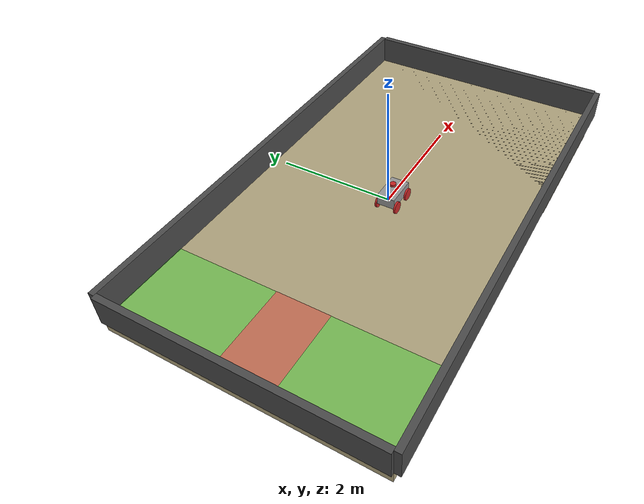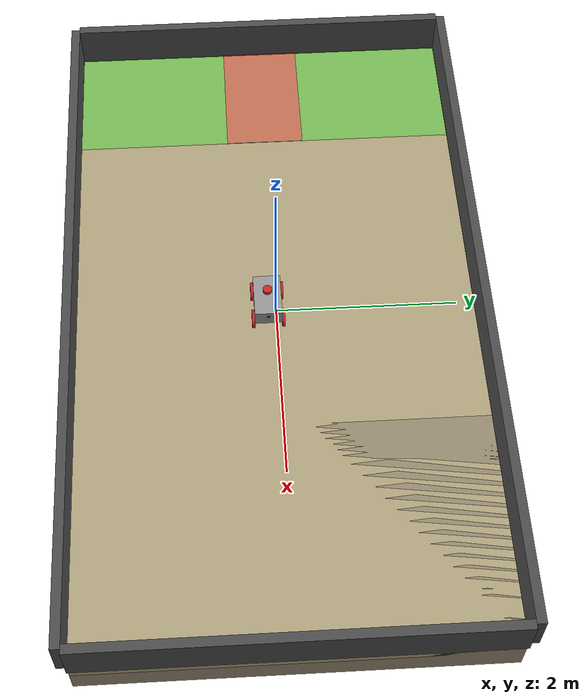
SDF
<sdf version="1.7">
 <world name="lunabotics_uk_arena">
  <physics type="ode">
   <max_step_size>0.001</max_step_size>
   <real_time_factor>1</real_time_factor>
   <real_time_update_rate>1000</real_time_update_rate>
   <gravity>0 0 -9.81</gravity>
  </physics>
  <light name="sun" type="directional">
   <pose>0 0 10 0 -0 0</pose>
   <diffuse>0.8 0.8 0.8 1</diffuse>
   <specular>0.2 0.2 0.2 1</specular>
   <attenuation>
    <range>1000</range>
    <constant>0.9</constant>
    <linear>0.01</linear>
    <quadratic>0.001</quadratic>
   </attenuation>
   <direction>-0.5 0.1 -0.9</direction>
   <spot><inner_angle>0</inner_angle><outer_angle>0</outer_angle><falloff>0</falloff></spot>
  </light>
  <model name="arena_floor">
   <static>1</static>
   <link name="floor_link">
    <collision name="floor_collision">
     <geometry><box><size>7.9 4.4 0.215</size></box></geometry>
     <surface><friction><ode><mu>0.8</mu><mu2>0.8</mu2></ode></friction></surface>
    </collision>
    <visual name="floor_visual">
     <geometry><box><size>7.9 4.4 0.215</size></box></geometry>
     <material><ambient>0.7 0.65 0.5 1</ambient><diffuse>0.7 0.65 0.5 1</diffuse></material>
    </visual>
    <pose>0 0 -0.1075 0 -0 0</pose>
   </link>
  </model>
  <model name="wall_north">
   <static>1</static>
   <link name="link">
    <collision name="collision"><geometry><box><size>7.9 0.1 0.5</size></box></geometry></collision>
    <visual name="visual">
     <geometry><box><size>7.9 0.1 0.5</size></box></geometry>
     <material><ambient>0.3 0.3 0.3 1</ambient><diffuse>0.3 0.3 0.3 1</diffuse></material>
    </visual>
    <pose>0 2.25 0.25 0 -0 0</pose>
   </link>
  </model>
  <model name="wall_south">
   <static>1</static>
   <link name="link">
    <collision name="collision"><geometry><box><size>7.9 0.1 0.5</size></box></geometry></collision>
    <visual name="visual">
     <geometry><box><size>7.9 0.1 0.5</size></box></geometry>
     <material><ambient>0.3 0.3 0.3 1</ambient><diffuse>0.3 0.3 0.3 1</diffuse></material>
    </visual>
    <pose>0 -2.25 0.25 0 -0 0</pose>
   </link>
  </model>
  <model name="wall_east">
   <static>1</static>
   <link name="link">
    <collision name="collision"><geometry><box><size>0.1 4.4 0.5</size></box></geometry></collision>
    <visual name="visual">
     <geometry><box><size>0.1 4.4 0.5</size></box></geometry>
     <material><ambient>0.3 0.3 0.3 1</ambient><diffuse>0.3 0.3 0.3 1</diffuse></material>
    </visual>
    <pose>3.95 0 0.25 0 -0 0</pose>
   </link>
  </model>
  <model name="wall_west">
   <static>1</static>
   <link name="link">
    <collision name="collision"><geometry><box><size>0.1 4.4 0.5</size></box></geometry></collision>
    <visual name="visual">
     <geometry><box><size>0.1 4.4 0.5</size></box></geometry>
     <material><ambient>0.3 0.3 0.3 1</ambient><diffuse>0.3 0.3 0.3 1</diffuse></material>
    </visual>
    <pose>-3.95 0 0.25 0 -0 0</pose>
   </link>
  </model>
  <model name="excavation_zone">
   <static>1</static>
   <link name="link">
    <collision name="collision">
     <geometry><box><size>2.5 4.4 0.515</size></box></geometry>
     <surface><friction><ode><mu>0.8</mu><mu2>0.8</mu2></ode></friction></surface>
    </collision>
    <visual name="visual">
     <geometry><box><size>2.5 4.4 0.515</size></box></geometry>
     <material><ambient>0.6 0.55 0.45 1</ambient><diffuse>0.6 0.55 0.45 1</diffuse></material>
    </visual>
    <pose>2.7 0 -0.2575 0 -0 0</pose>
   </link>
  </model>
  <model name="starting_zone_marker">
   <static>1</static>
   <link name="link">
    <visual name="visual">
     <geometry><box><size>1.5 4.4 0.01</size></box></geometry>
     <material><ambient>0 1 0 0.3</ambient><diffuse>0 1 0 0.3</diffuse></material>
    </visual>
    <pose>-3.2 0 0.005 0 -0 0</pose>
   </link>
  </model>
  <model name="construction_target_marker">
   <static>1</static>
   <link name="link">
    <visual name="visual">
     <geometry><box><size>1.5 0.9 0.01</size></box></geometry>
     <material><ambient>1 0 0 0.3</ambient><diffuse>1 0 0 0.3</diffuse></material>
    </visual>
    <pose>-3.2 0 0.01 0 -0 0</pose>
   </link>
  </model>
  <gravity>0 0 -9.8</gravity>
  <magnetic_field>6e-06 2.3e-05 -4.2e-05</magnetic_field>
  <atmosphere type="adiabatic"/>
  <scene><ambient>0.4 0.4 0.4 1</ambient><background>0.7 0.7 0.7 1</background><shadows>1</shadows></scene>
  <audio><device>default</device></audio>
  <spherical_coordinates>
   <surface_model>EARTH_WGS84</surface_model>
   <latitude_deg>0</latitude_deg>
   <longitude_deg>0</longitude_deg>
   <elevation>0</elevation>
   <heading_deg>0</heading_deg>
  </spherical_coordinates>
  <model name="rover">
   <link name="base_link">
    <inertial>
     <pose>0.001156 0 0.092447 0 -0 0</pose>
     <mass>10.163</mass>
     <inertia>
      <ixx>0.106677</ixx>
      <ixy>0</ixy>
      <ixz>-0.000653746</ixz>
      <iyy>0.24331</iyy>
      <iyz>0</iyz>
      <izz>0.286769</izz>
     </inertia>
    </inertial>
    <collision name="base_link_collision">
     <pose>0 0 0.12 0 -0 0</pose>
     <geometry><box><size>0.5 0.3 0.18</size></box></geometry>
    </collision>
    <collision name="base_link_fixed_joint_lump__back_camera_link_collision_1">
     <pose>-0.25 0 0.18 0 -0 3.14159</pose>
     <geometry><box><size>0.025 0.024 0.009</size></box></geometry>
    </collision>
    <collision name="base_link_fixed_joint_lump__camera_link_collision_2">
     <pose>0.25 0 0.15 0 -0 0</pose>
     <geometry><box><size>0.01 0.03 0.03</size></box></geometry>
    </collision>
    <collision name="base_link_fixed_joint_lump__laser_frame_collision_3">
     <pose>0 0 0.3 0 -0 0</pose>
     <geometry><cylinder><length>0.04</length><radius>0.05</radius></cylinder></geometry>
    </collision>
    <visual name="base_link_visual">
     <pose>0 0 0.12 0 -0 0</pose>
     <geometry><box><size>0.5 0.3 0.18</size></box></geometry>
     <material>
      <script><name>Gazebo/Grey</name><uri>file://media/materials/scripts/gazebo.material</uri></script>
     </material>
    </visual>
    <visual name="base_link_fixed_joint_lump__back_camera_link_visual_1">
     <pose>-0.25 0 0.18 0 -0 3.14159</pose>
     <geometry><box><size>0.025 0.024 0.009</size></box></geometry>
     <material>
      <script><name>Gazebo/Blue</name><uri>file://media/materials/scripts/gazebo.material</uri></script>
     </material>
    </visual>
    <visual name="base_link_fixed_joint_lump__camera_link_visual_2">
     <pose>0.25 0 0.15 0 -0 0</pose>
     <geometry><box><size>0.01 0.03 0.03</size></box></geometry>
     <material>
      <script><name>Gazebo/Red</name><uri>file://media/materials/scripts/gazebo.material</uri></script>
     </material>
    </visual>
    <visual name="base_link_fixed_joint_lump__laser_frame_visual_3">
     <pose>0 0 0.3 0 -0 0</pose>
     <geometry><cylinder><length>0.04</length><radius>0.05</radius></cylinder></geometry>
     <material>
      <script><name>Gazebo/Red</name><uri>file://media/materials/scripts/gazebo.material</uri></script>
     </material>
    </visual>
    <sensor name="back_camera" type="camera">
     <always_on>1</always_on>
     <visualize>1</visualize>
     <update_rate>30</update_rate>
     <camera>
      <horizontal_fov>2.0944</horizontal_fov>
      <image><format>R8G8B8</format><width>1920</width><height>1080</height></image>
      <clip><near>0.02</near><far>300</far></clip>
      <noise><type>gaussian</type><mean>0</mean><stddev>0.007</stddev></noise>
     </camera>
     <plugin name="back_camera_controller" filename="libgazebo_ros_camera.so">
      <frame_name>back_camera_link_optical</frame_name>
      <ros>
       <namespace>/</namespace>
       <remapping>image_raw:=back_camera/image_raw</remapping>
       <remapping>camera_info:=back_camera/camera_info</remapping>
      </ros>
      <distortion_k1>0.0</distortion_k1>
      <distortion_k2>0.0</distortion_k2>
      <distortion_k3>0.0</distortion_k3>
      <distortion_t1>0.0</distortion_t1>
      <distortion_t2>0.0</distortion_t2>
      <hack_baseline>0.0</hack_baseline>
     </plugin>
     <pose>-0.25 0 0.18 0 -0 3.14159</pose>
    </sensor>
    <sensor name="depth_camera" type="depth">
     <always_on>1</always_on>
     <visualize>1</visualize>
     <update_rate>10</update_rate>
     <camera>
      <horizontal_fov>1.089</horizontal_fov>
      <image><format>B8G8R8</format><width>640</width><height>480</height></image>
      <clip><near>0.05</near><far>8</far></clip>
     </camera>
     <plugin name="depth_camera_controller" filename="libgazebo_ros_camera.so">
      <frame_name>camera_link_optical</frame_name>
      <camera_name>depth_camera</camera_name>
      <image_topic_name>rgb/image_raw</image_topic_name>
      <camera_info_topic_name>rgb/camera_info</camera_info_topic_name>
      <depth_image_topic_name>depth/image_raw</depth_image_topic_name>
      <depth_camera_info_topic_name>depth/camera_info</depth_camera_info_topic_name>
      <point_cloud_topic_name>depth/points</point_cloud_topic_name>
     </plugin>
     <pose>0.25 0 0.15 0 -0 0</pose>
    </sensor>
    <sensor name="imu_sensor" type="imu">
     <always_on>1</always_on>
     <update_rate>50</update_rate>
     <visualize>0</visualize>
     <imu>
      <angular_velocity>
       <x><noise type="gaussian"><mean>0</mean><stddev>0.0002</stddev></noise></x>
       <y><noise type="gaussian"><mean>0</mean><stddev>0.0002</stddev></noise></y>
       <z><noise type="gaussian"><mean>0</mean><stddev>0.0002</stddev></noise></z>
      </angular_velocity>
     </imu>
     <plugin name="imu_plugin" filename="libgazebo_ros_imu_sensor.so">
      <ros><remapping>~/out:=/imu/data</remapping></ros>
      <frame_name>imu_link</frame_name>
     </plugin>
     <pose>0 0 0.15 0 -0 0</pose>
    </sensor>
    <sensor name="laser" type="ray">
     <visualize>1</visualize>
     <update_rate>10</update_rate>
     <ray>
      <scan>
       <horizontal>
        <samples>360</samples>
        <min_angle>-3.14</min_angle>
        <max_angle>3.14</max_angle>
        <resolution>1</resolution>
       </horizontal>
       <vertical><samples>1</samples><min_angle>0</min_angle><max_angle>0</max_angle></vertical>
      </scan>
      <range><min>0.3</min><max>12</max></range>
     </ray>
     <plugin name="laser_controller" filename="libgazebo_ros_ray_sensor.so">
      <ros><argument>~/out:=scan</argument></ros>
      <output_type>sensor_msgs/LaserScan</output_type>
      <frame_name>laser_frame</frame_name>
     </plugin>
     <pose>0 0 0.3 0 -0 0</pose>
    </sensor>
   </link>
   <joint name="front_left_wheel_joint" type="revolute">
    <pose relative_to="base_link">0.18 0.165 0.02 0 -0 0</pose>
    <parent>base_link</parent>
    <child>front_left_wheel</child>
    <axis>
     <xyz>0 1 0</xyz>
     <limit><lower>-1e+16</lower><upper>1e+16</upper></limit>
     <dynamics><spring_reference>0</spring_reference><spring_stiffness>0</spring_stiffness></dynamics>
    </axis>
   </joint>
   <link name="front_left_wheel">
    <pose relative_to="front_left_wheel_joint">0 0 0 0 -0 0</pose>
    <inertial>
     <mass>0.5</mass>
     <inertia>
      <ixx>0.0012875</ixx>
      <ixy>0</ixy>
      <ixz>0</ixz>
      <iyy>0.0012875</iyy>
      <iyz>0</iyz>
      <izz>0.0025</izz>
     </inertia>
    </inertial>
    <collision name="front_left_wheel_collision">
     <pose>0 0 0 1.5708 -0 0</pose>
     <geometry><cylinder><length>0.03</length><radius>0.1</radius></cylinder></geometry>
    </collision>
    <visual name="front_left_wheel_visual">
     <pose>0 0 0 1.5708 -0 0</pose>
     <geometry><cylinder><length>0.03</length><radius>0.1</radius></cylinder></geometry>
     <material>
      <script><name>Gazebo/Red</name><uri>file://media/materials/scripts/gazebo.material</uri></script>
     </material>
    </visual>
   </link>
   <joint name="front_right_wheel_joint" type="revolute">
    <pose relative_to="base_link">0.18 -0.165 0.02 0 -0 0</pose>
    <parent>base_link</parent>
    <child>front_right_wheel</child>
    <axis>
     <xyz>0 1 0</xyz>
     <limit><lower>-1e+16</lower><upper>1e+16</upper></limit>
     <dynamics><spring_reference>0</spring_reference><spring_stiffness>0</spring_stiffness></dynamics>
    </axis>
   </joint>
   <link name="front_right_wheel">
    <pose relative_to="front_right_wheel_joint">0 0 0 0 -0 0</pose>
    <inertial>
     <mass>0.5</mass>
     <inertia>
      <ixx>0.0012875</ixx>
      <ixy>0</ixy>
      <ixz>0</ixz>
      <iyy>0.0012875</iyy>
      <iyz>0</iyz>
      <izz>0.0025</izz>
     </inertia>
    </inertial>
    <collision name="front_right_wheel_collision">
     <pose>0 0 0 1.5708 -0 0</pose>
     <geometry><cylinder><length>0.03</length><radius>0.1</radius></cylinder></geometry>
    </collision>
    <visual name="front_right_wheel_visual">
     <pose>0 0 0 1.5708 -0 0</pose>
     <geometry><cylinder><length>0.03</length><radius>0.1</radius></cylinder></geometry>
     <material>
      <script><name>Gazebo/Red</name><uri>file://media/materials/scripts/gazebo.material</uri></script>
     </material>
    </visual>
   </link>
   <joint name="rear_left_wheel_joint" type="revolute">
    <pose relative_to="base_link">-0.18 0.165 0.02 0 -0 0</pose>
    <parent>base_link</parent>
    <child>rear_left_wheel</child>
    <axis>
     <xyz>0 1 0</xyz>
     <limit><lower>-1e+16</lower><upper>1e+16</upper></limit>
     <dynamics><spring_reference>0</spring_reference><spring_stiffness>0</spring_stiffness></dynamics>
    </axis>
   </joint>
   <link name="rear_left_wheel">
    <pose relative_to="rear_left_wheel_joint">0 0 0 0 -0 0</pose>
    <inertial>
     <mass>0.5</mass>
     <inertia>
      <ixx>0.0012875</ixx>
      <ixy>0</ixy>
      <ixz>0</ixz>
      <iyy>0.0012875</iyy>
      <iyz>0</iyz>
      <izz>0.0025</izz>
     </inertia>
    </inertial>
    <collision name="rear_left_wheel_collision">
     <pose>0 0 0 1.5708 -0 0</pose>
     <geometry><cylinder><length>0.03</length><radius>0.1</radius></cylinder></geometry>
     <surface><friction><ode><mu>0.0001</mu><mu2>0.0001</mu2></ode></friction></surface>
    </collision>
    <visual name="rear_left_wheel_visual">
     <pose>0 0 0 1.5708 -0 0</pose>
     <geometry><cylinder><length>0.03</length><radius>0.1</radius></cylinder></geometry>
     <material>
      <script><name>Gazebo/Red</name><uri>file://media/materials/scripts/gazebo.material</uri></script>
     </material>
    </visual>
    <slip1 value="1.0"/>
    <slip2 value="1.0"/>
   </link>
   <joint name="rear_right_wheel_joint" type="revolute">
    <pose relative_to="base_link">-0.18 -0.165 0.02 0 -0 0</pose>
    <parent>base_link</parent>
    <child>rear_right_wheel</child>
    <axis>
     <xyz>0 1 0</xyz>
     <limit><lower>-1e+16</lower><upper>1e+16</upper></limit>
     <dynamics><spring_reference>0</spring_reference><spring_stiffness>0</spring_stiffness></dynamics>
    </axis>
   </joint>
   <link name="rear_right_wheel">
    <pose relative_to="rear_right_wheel_joint">0 0 0 0 -0 0</pose>
    <inertial>
     <mass>0.5</mass>
     <inertia>
      <ixx>0.0012875</ixx>
      <ixy>0</ixy>
      <ixz>0</ixz>
      <iyy>0.0012875</iyy>
      <iyz>0</iyz>
      <izz>0.0025</izz>
     </inertia>
    </inertial>
    <collision name="rear_right_wheel_collision">
     <pose>0 0 0 1.5708 -0 0</pose>
     <geometry><cylinder><length>0.03</length><radius>0.1</radius></cylinder></geometry>
     <surface><friction><ode><mu>0.0001</mu><mu2>0.0001</mu2></ode></friction></surface>
    </collision>
    <visual name="rear_right_wheel_visual">
     <pose>0 0 0 1.5708 -0 0</pose>
     <geometry><cylinder><length>0.03</length><radius>0.1</radius></cylinder></geometry>
     <material>
      <script><name>Gazebo/Red</name><uri>file://media/materials/scripts/gazebo.material</uri></script>
     </material>
    </visual>
    <slip1 value="1.0"/>
    <slip2 value="1.0"/>
   </link>
   <static>0</static>
   <plugin name="gazebo_ros2_control" filename="libgazebo_ros2_control.so">
    <parameters>/home/js/lunabotics/luna_ws/install/luna_sim/share/luna_sim/config/my_controllers.yaml</parameters>
   </plugin>
   <pose>-0.020979 -0.092745 0.080001 3e-06 -2e-06 0.004453</pose>
  </model>
 </world>
</sdf>
